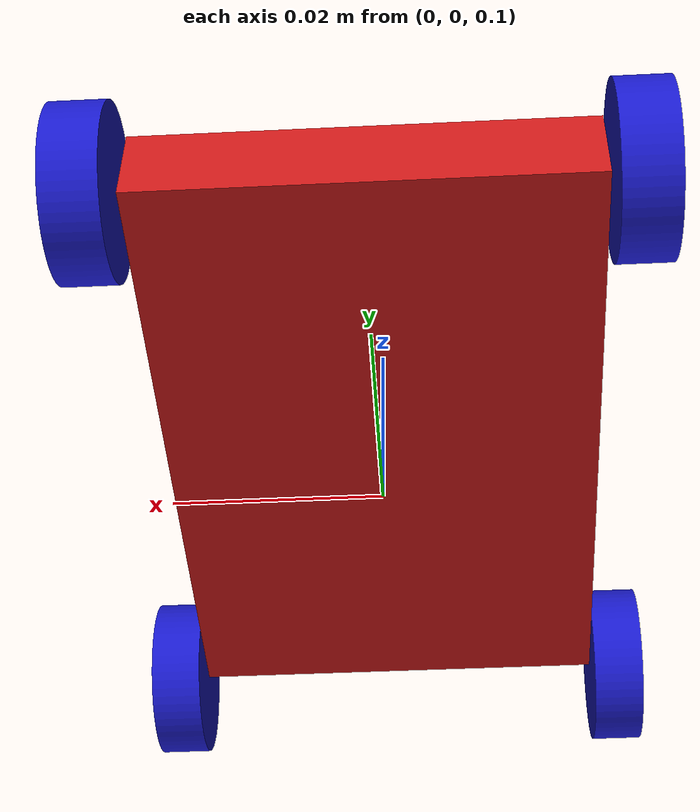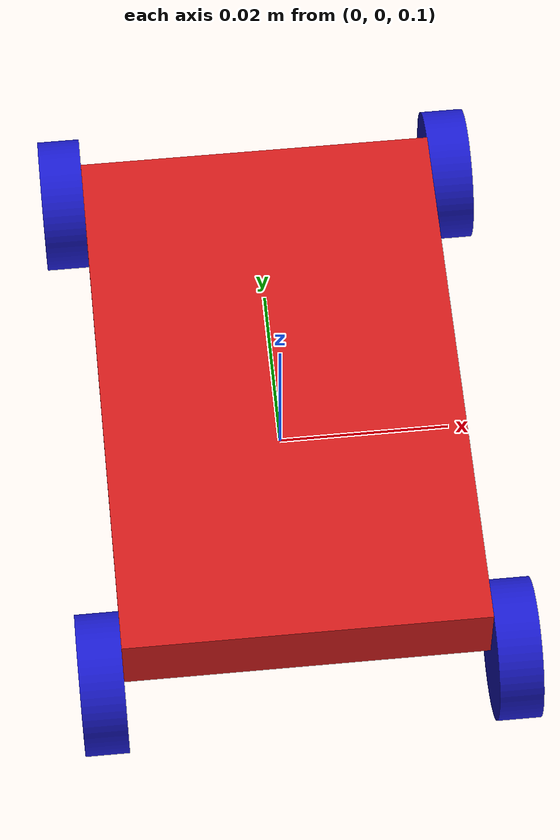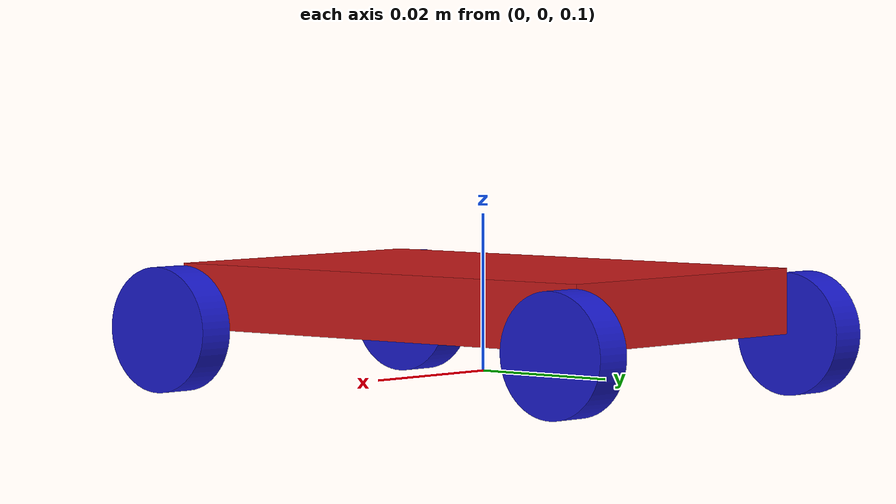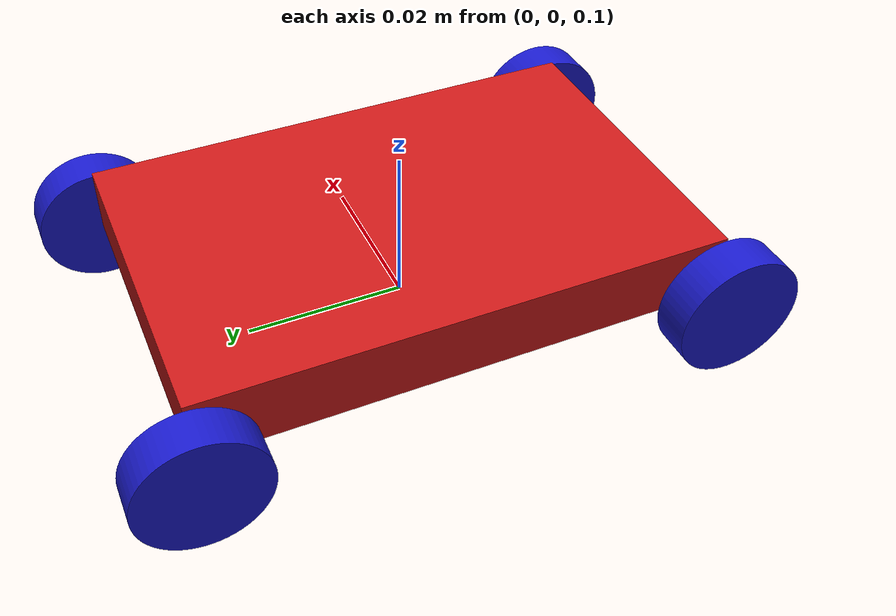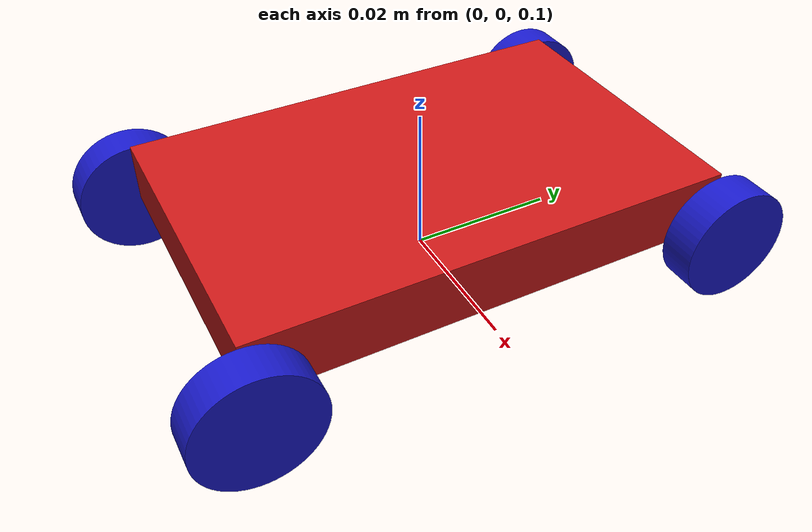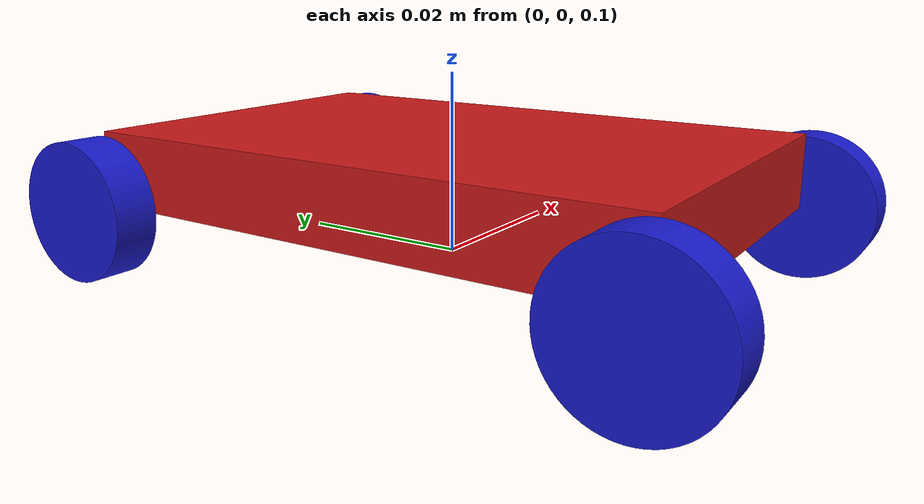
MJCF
<mujoco model="really_simple_car">
    <asset>
        <mesh name="base" file="base.stl" />
        <mesh name="frontleft_wheel" file="frontleft_wheel.stl" />
        <mesh name="frontright_wheel" file="frontright_wheel.stl"/>
        <mesh name="backleft_wheel" file="backleft_wheel.stl" />
        <mesh name="backright_wheel" file="backright_wheel.stl"/>
        <material name="red" rgba="0.8 0.1 0.1 1"/>
        <material name="blue" rgba="0.1 0.1 0.8 1"/>
    </asset>
    <worldbody>
        <body name="base" pos="0 0 0.1">
            <joint type="free"/>
            <geom mesh="base" type="mesh" material="red"/>
            <body name="frontleft_wheel">
                <geom mesh="frontleft_wheel" type="mesh" material="blue"/>
                <joint name="joint_frontleft_wheel" pos="0.02087553 -0.03250000 0.00506246" axis="1 0 0" type="hinge" limited="false"/>
            </body>
            <body name="frontright_wheel">
                <geom mesh="frontright_wheel" type="mesh" material="blue" />
                <joint name="joint_frontright_wheel" pos="-0.02087553 -0.03250000 0.00506246" axis="1 0 0" type="hinge"  limited="false"/>
            </body>
            <body name="backleft_wheel">
                <geom mesh="backleft_wheel" type="mesh" material="blue"/>
                <joint name="joint_backleft_wheel" pos="0.02087553 0.03250000 0.00506246" axis="1 0 0" type="hinge" limited="false"/>
            </body>
            <body name="backright_wheel">
                <geom mesh="backright_wheel" type="mesh" material="blue"/>
                <joint name="joint_backright_wheel" pos="-0.02087553 0.03250000 0.00506246" axis="1 0 0" type="hinge"  limited="false"/>
            </body>
        </body>
    </worldbody>
    <actuator>
        <motor name="left_motor" joint="joint_frontleft_wheel" gear="0.00001" ctrlrange="-20 20" ctrllimited="true" />
        <motor name="right_motor" joint="joint_frontright_wheel" gear="0.00001" ctrlrange="-20 20" ctrllimited="true"/>
    </actuator>
</mujoco>
>>>>>>> Stashed changes
